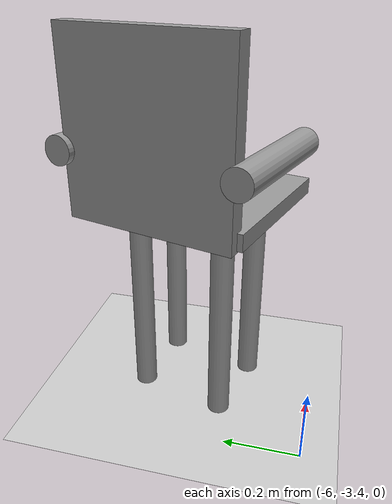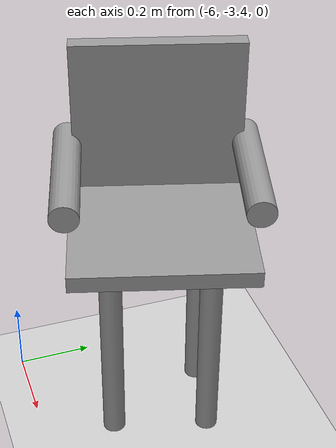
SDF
<sdf version="1.6">
 <world name="default">
  <model name="ground_plane">
   <static>1</static>
   <link name="link">
    <collision name="collision">
     <geometry><plane><normal>0 0 1</normal><size>100 100</size></plane></geometry>
     <surface>
      <contact><collide_bitmask>65535</collide_bitmask></contact>
      <friction><ode><mu>100</mu><mu2>50</mu2></ode></friction>
     </surface>
    </collision>
    <visual name="visual">
     <cast_shadows>0</cast_shadows>
     <geometry><plane><normal>0 0 1</normal><size>100 100</size></plane></geometry>
     <material>
      <script><uri>file://media/materials/scripts/gazebo.material</uri><name>Gazebo/Grey</name></script>
     </material>
    </visual>
   </link>
  </model>
  <model name="chair_clone_0">
   <link name="link_4">
    <inertial>
     <mass>0.00194051</mass>
     <inertia>
      <ixx>5.14044e-05</ixx>
      <ixy>0</ixy>
      <ixz>0</ixz>
      <iyy>5.14044e-05</iyy>
      <iyz>0</iyz>
      <izz>8.34973e-07</izz>
     </inertia>
    </inertial>
    <pose>-0.140129 -0.127166 -0.209129 0 -0 0</pose>
    <visual name="visual">
     <geometry><cylinder><radius>0.0293355</radius><length>0.561516</length></cylinder></geometry>
     <material>
      <lighting>1</lighting>
      <script><uri>file://media/materials/scripts/gazebo.material</uri><name>Gazebo/Grey</name></script>
      <emissive>0 0 0 1</emissive>
     </material>
    </visual>
    <collision name="collision">
     <geometry><cylinder><radius>0.029336</radius><length>0.561516</length></cylinder></geometry>
     <surface>
      <friction>
       <ode><mu>1</mu><mu2>1</mu2><fdir1>0 0 0</fdir1><slip1>0</slip1><slip2>0</slip2></ode>
       <torsional>
        <coefficient>1</coefficient>
        <patch_radius>0</patch_radius>
        <surface_radius>0</surface_radius>
        <use_patch_radius>1</use_patch_radius>
        <ode><slip>0</slip></ode>
       </torsional>
      </friction>
      <bounce><restitution_coefficient>0</restitution_coefficient><threshold>1e+06</threshold></bounce>
      <contact>
       <collide_without_contact>0</collide_without_contact>
       <collide_without_contact_bitmask>1</collide_without_contact_bitmask>
       <collide_bitmask>1</collide_bitmask>
       <ode>
        <soft_cfm>0</soft_cfm>
        <soft_erp>0.2</soft_erp>
        <kp>1e+13</kp>
        <kd>1</kd>
        <max_vel>0.01</max_vel>
        <min_depth>0</min_depth>
       </ode>
       <bullet>
        <split_impulse>1</split_impulse>
        <split_impulse_penetration_threshold>-0.01</split_impulse_penetration_threshold>
        <soft_cfm>0</soft_cfm>
        <soft_erp>0.2</soft_erp>
        <kp>1e+13</kp>
        <kd>1</kd>
       </bullet>
      </contact>
     </surface>
    </collision>
   </link>
   <link name="link_4_clone">
    <inertial>
     <mass>0.00194051</mass>
     <inertia>
      <ixx>5.14044e-05</ixx>
      <ixy>0</ixy>
      <ixz>0</ixz>
      <iyy>5.14044e-05</iyy>
      <iyz>0</iyz>
      <izz>8.34973e-07</izz>
     </inertia>
    </inertial>
    <pose>-0.139565 0.126187 -0.209129 0 -0 0</pose>
    <visual name="visual">
     <geometry><cylinder><radius>0.0293355</radius><length>0.561516</length></cylinder></geometry>
     <material>
      <lighting>1</lighting>
      <script><uri>file://media/materials/scripts/gazebo.material</uri><name>Gazebo/Grey</name></script>
      <shader type="pixel"/>
      <emissive>0 0 0 1</emissive>
     </material>
    </visual>
    <collision name="collision">
     <geometry><cylinder><radius>0.029336</radius><length>0.561516</length></cylinder></geometry>
     <surface>
      <friction>
       <ode><mu>1</mu><mu2>1</mu2><fdir1>0 0 0</fdir1><slip1>0</slip1><slip2>0</slip2></ode>
       <torsional>
        <coefficient>1</coefficient>
        <patch_radius>0</patch_radius>
        <surface_radius>0</surface_radius>
        <use_patch_radius>1</use_patch_radius>
        <ode><slip>0</slip></ode>
       </torsional>
      </friction>
      <bounce><restitution_coefficient>0</restitution_coefficient><threshold>1e+06</threshold></bounce>
      <contact>
       <collide_without_contact>0</collide_without_contact>
       <collide_without_contact_bitmask>1</collide_without_contact_bitmask>
       <collide_bitmask>1</collide_bitmask>
       <ode>
        <soft_cfm>0</soft_cfm>
        <soft_erp>0.2</soft_erp>
        <kp>1e+13</kp>
        <kd>1</kd>
        <max_vel>0.01</max_vel>
        <min_depth>0</min_depth>
       </ode>
       <bullet>
        <split_impulse>1</split_impulse>
        <split_impulse_penetration_threshold>-0.01</split_impulse_penetration_threshold>
        <soft_cfm>0</soft_cfm>
        <soft_erp>0.2</soft_erp>
        <kp>1e+13</kp>
        <kd>1</kd>
       </bullet>
      </contact>
     </surface>
    </collision>
   </link>
   <link name="link_4_clone_0">
    <inertial>
     <mass>0.00194051</mass>
     <inertia>
      <ixx>5.14044e-05</ixx>
      <ixy>0</ixy>
      <ixz>0</ixz>
      <iyy>5.14044e-05</iyy>
      <iyz>0</iyz>
      <izz>8.34973e-07</izz>
     </inertia>
    </inertial>
    <pose>0.062929 0.13105 -0.209129 0 -0 0</pose>
    <visual name="visual">
     <geometry><cylinder><radius>0.0293355</radius><length>0.561516</length></cylinder></geometry>
     <material>
      <lighting>1</lighting>
      <script><uri>file://media/materials/scripts/gazebo.material</uri><name>Gazebo/Grey</name></script>
      <shader type="pixel"/>
      <emissive>0 0 0 1</emissive>
     </material>
    </visual>
    <collision name="collision">
     <geometry><cylinder><radius>0.029336</radius><length>0.561516</length></cylinder></geometry>
     <surface>
      <friction>
       <ode><mu>1</mu><mu2>1</mu2><fdir1>0 0 0</fdir1><slip1>0</slip1><slip2>0</slip2></ode>
       <torsional>
        <coefficient>1</coefficient>
        <patch_radius>0</patch_radius>
        <surface_radius>0</surface_radius>
        <use_patch_radius>1</use_patch_radius>
        <ode><slip>0</slip></ode>
       </torsional>
      </friction>
      <bounce><restitution_coefficient>0</restitution_coefficient><threshold>1e+06</threshold></bounce>
      <contact>
       <collide_without_contact>0</collide_without_contact>
       <collide_without_contact_bitmask>1</collide_without_contact_bitmask>
       <collide_bitmask>1</collide_bitmask>
       <ode>
        <soft_cfm>0</soft_cfm>
        <soft_erp>0.2</soft_erp>
        <kp>1e+13</kp>
        <kd>1</kd>
        <max_vel>0.01</max_vel>
        <min_depth>0</min_depth>
       </ode>
       <bullet>
        <split_impulse>1</split_impulse>
        <split_impulse_penetration_threshold>-0.01</split_impulse_penetration_threshold>
        <soft_cfm>0</soft_cfm>
        <soft_erp>0.2</soft_erp>
        <kp>1e+13</kp>
        <kd>1</kd>
       </bullet>
      </contact>
     </surface>
    </collision>
   </link>
   <link name="link_4_clone_1">
    <inertial>
     <mass>0.00194051</mass>
     <inertia>
      <ixx>5.14044e-05</ixx>
      <ixy>0</ixy>
      <ixz>0</ixz>
      <iyy>5.14044e-05</iyy>
      <iyz>0</iyz>
      <izz>8.34973e-07</izz>
     </inertia>
    </inertial>
    <pose>0.061641 -0.111934 -0.209129 0 -0 0</pose>
    <visual name="visual">
     <geometry><cylinder><radius>0.0293355</radius><length>0.561516</length></cylinder></geometry>
     <material>
      <lighting>1</lighting>
      <script><uri>file://media/materials/scripts/gazebo.material</uri><name>Gazebo/Grey</name></script>
      <shader type="pixel"/>
      <emissive>0 0 0 1</emissive>
     </material>
    </visual>
    <collision name="collision">
     <geometry><cylinder><radius>0.029336</radius><length>0.561516</length></cylinder></geometry>
     <surface>
      <friction>
       <ode><mu>1</mu><mu2>1</mu2><fdir1>0 0 0</fdir1><slip1>0</slip1><slip2>0</slip2></ode>
       <torsional>
        <coefficient>1</coefficient>
        <patch_radius>0</patch_radius>
        <surface_radius>0</surface_radius>
        <use_patch_radius>1</use_patch_radius>
        <ode><slip>0</slip></ode>
       </torsional>
      </friction>
      <bounce><restitution_coefficient>0</restitution_coefficient><threshold>1e+06</threshold></bounce>
      <contact>
       <collide_without_contact>0</collide_without_contact>
       <collide_without_contact_bitmask>1</collide_without_contact_bitmask>
       <collide_bitmask>1</collide_bitmask>
       <ode>
        <soft_cfm>0</soft_cfm>
        <soft_erp>0.2</soft_erp>
        <kp>1e+13</kp>
        <kd>1</kd>
        <max_vel>0.01</max_vel>
        <min_depth>0</min_depth>
       </ode>
       <bullet>
        <split_impulse>1</split_impulse>
        <split_impulse_penetration_threshold>-0.01</split_impulse_penetration_threshold>
        <soft_cfm>0</soft_cfm>
        <soft_erp>0.2</soft_erp>
        <kp>1e+13</kp>
        <kd>1</kd>
       </bullet>
      </contact>
     </surface>
    </collision>
   </link>
   <link name="link_5">
    <inertial>
     <mass>0.00816884</mass>
     <inertia>
      <ixx>0.00015002</ixx>
      <ixy>0</ixy>
      <ixz>0</ixz>
      <iyy>0.000115328</iyy>
      <iyz>0</iyz>
      <izz>0.000262862</izz>
     </inertia>
    </inertial>
    <pose>-0.041662 -0.005028 0.089077 0 -0 0</pose>
    <visual name="visual">
     <geometry><box><size>0.409378 0.467496 0.042729</size></box></geometry>
     <material>
      <lighting>1</lighting>
      <script><uri>file://media/materials/scripts/gazebo.material</uri><name>Gazebo/Grey</name></script>
      <emissive>0 0 0 1</emissive>
     </material>
    </visual>
    <collision name="collision">
     <geometry><box><size>0.409378 0.467496 0.042729</size></box></geometry>
     <surface>
      <friction>
       <ode><mu>1</mu><mu2>1</mu2><fdir1>0 0 0</fdir1><slip1>0</slip1><slip2>0</slip2></ode>
       <torsional>
        <coefficient>1</coefficient>
        <patch_radius>0</patch_radius>
        <surface_radius>0</surface_radius>
        <use_patch_radius>1</use_patch_radius>
        <ode><slip>0</slip></ode>
       </torsional>
      </friction>
      <bounce><restitution_coefficient>0</restitution_coefficient><threshold>1e+06</threshold></bounce>
      <contact>
       <collide_without_contact>0</collide_without_contact>
       <collide_without_contact_bitmask>1</collide_without_contact_bitmask>
       <collide_bitmask>1</collide_bitmask>
       <ode>
        <soft_cfm>0</soft_cfm>
        <soft_erp>0.2</soft_erp>
        <kp>1e+13</kp>
        <kd>1</kd>
        <max_vel>0.01</max_vel>
        <min_depth>0</min_depth>
       </ode>
       <bullet>
        <split_impulse>1</split_impulse>
        <split_impulse_penetration_threshold>-0.01</split_impulse_penetration_threshold>
        <soft_cfm>0</soft_cfm>
        <soft_erp>0.2</soft_erp>
        <kp>1e+13</kp>
        <kd>1</kd>
       </bullet>
      </contact>
     </surface>
    </collision>
   </link>
   <link name="link_6">
    <inertial>
     <mass>0.00855687</mass>
     <inertia>
      <ixx>0.000285159</ixx>
      <ixy>0</ixy>
      <ixz>0</ixz>
      <iyy>0.000146983</iyy>
      <iyz>0</iyz>
      <izz>0.000140925</izz>
     </inertia>
    </inertial>
    <pose>0.165697 -0.006458 0.287866 0 -0 0</pose>
    <visual name="visual">
     <geometry><box><size>0.0439 0.442383 0.451884</size></box></geometry>
     <material>
      <lighting>1</lighting>
      <script><uri>file://media/materials/scripts/gazebo.material</uri><name>Gazebo/Grey</name></script>
      <emissive>0 0 0 1</emissive>
     </material>
    </visual>
    <collision name="collision">
     <geometry><box><size>0.0439 0.442383 0.451884</size></box></geometry>
     <surface>
      <friction>
       <ode><mu>1</mu><mu2>1</mu2><fdir1>0 0 0</fdir1><slip1>0</slip1><slip2>0</slip2></ode>
       <torsional>
        <coefficient>1</coefficient>
        <patch_radius>0</patch_radius>
        <surface_radius>0</surface_radius>
        <use_patch_radius>1</use_patch_radius>
        <ode><slip>0</slip></ode>
       </torsional>
      </friction>
      <bounce><restitution_coefficient>0</restitution_coefficient><threshold>1e+06</threshold></bounce>
      <contact>
       <collide_without_contact>0</collide_without_contact>
       <collide_without_contact_bitmask>1</collide_without_contact_bitmask>
       <collide_bitmask>1</collide_bitmask>
       <ode>
        <soft_cfm>0</soft_cfm>
        <soft_erp>0.2</soft_erp>
        <kp>1e+13</kp>
        <kd>1</kd>
        <max_vel>0.01</max_vel>
        <min_depth>0</min_depth>
       </ode>
       <bullet>
        <split_impulse>1</split_impulse>
        <split_impulse_penetration_threshold>-0.01</split_impulse_penetration_threshold>
        <soft_cfm>0</soft_cfm>
        <soft_erp>0.2</soft_erp>
        <kp>1e+13</kp>
        <kd>1</kd>
       </bullet>
      </contact>
     </surface>
    </collision>
   </link>
   <link name="link_7">
    <inertial>
     <mass>0.00209129</mass>
     <inertia>
      <ixx>2.57536e-05</ixx>
      <ixy>0</ixy>
      <ixz>0</ixz>
      <iyy>2.57536e-05</iyy>
      <iyz>0</iyz>
      <izz>1.44551e-06</izz>
     </inertia>
    </inertial>
    <pose>0.0147 0.228665 0.230372 0 1.55081 0</pose>
    <visual name="visual">
     <geometry><cylinder><radius>0.0371808</radius><length>0.378984</length></cylinder></geometry>
     <material>
      <lighting>1</lighting>
      <script><uri>file://media/materials/scripts/gazebo.material</uri><name>Gazebo/Grey</name></script>
      <emissive>0 0 0 1</emissive>
     </material>
    </visual>
    <collision name="collision">
     <geometry><cylinder><radius>0.037181</radius><length>0.378984</length></cylinder></geometry>
     <surface>
      <friction>
       <ode><mu>1</mu><mu2>1</mu2><fdir1>0 0 0</fdir1><slip1>0</slip1><slip2>0</slip2></ode>
       <torsional>
        <coefficient>1</coefficient>
        <patch_radius>0</patch_radius>
        <surface_radius>0</surface_radius>
        <use_patch_radius>1</use_patch_radius>
        <ode><slip>0</slip></ode>
       </torsional>
      </friction>
      <bounce><restitution_coefficient>0</restitution_coefficient><threshold>1e+06</threshold></bounce>
      <contact>
       <collide_without_contact>0</collide_without_contact>
       <collide_without_contact_bitmask>1</collide_without_contact_bitmask>
       <collide_bitmask>1</collide_bitmask>
       <ode>
        <soft_cfm>0</soft_cfm>
        <soft_erp>0.2</soft_erp>
        <kp>1e+13</kp>
        <kd>1</kd>
        <max_vel>0.01</max_vel>
        <min_depth>0</min_depth>
       </ode>
       <bullet>
        <split_impulse>1</split_impulse>
        <split_impulse_penetration_threshold>-0.01</split_impulse_penetration_threshold>
        <soft_cfm>0</soft_cfm>
        <soft_erp>0.2</soft_erp>
        <kp>1e+13</kp>
        <kd>1</kd>
       </bullet>
      </contact>
     </surface>
    </collision>
   </link>
   <link name="link_7_clone">
    <inertial>
     <mass>0.00209129</mass>
     <inertia>
      <ixx>2.57536e-05</ixx>
      <ixy>0</ixy>
      <ixz>0</ixz>
      <iyy>2.57536e-05</iyy>
      <iyz>0</iyz>
      <izz>1.44551e-06</izz>
     </inertia>
    </inertial>
    <pose>0.01639 -0.235319 0.229201 0 1.55081 0</pose>
    <visual name="visual">
     <geometry><cylinder><radius>0.0371808</radius><length>0.378984</length></cylinder></geometry>
     <material>
      <lighting>1</lighting>
      <script><uri>file://media/materials/scripts/gazebo.material</uri><name>Gazebo/Grey</name></script>
      <shader type="pixel"/>
      <emissive>0 0 0 1</emissive>
     </material>
    </visual>
    <collision name="collision">
     <geometry><cylinder><radius>0.037181</radius><length>0.378984</length></cylinder></geometry>
     <surface>
      <friction>
       <ode><mu>1</mu><mu2>1</mu2><fdir1>0 0 0</fdir1><slip1>0</slip1><slip2>0</slip2></ode>
       <torsional>
        <coefficient>1</coefficient>
        <patch_radius>0</patch_radius>
        <surface_radius>0</surface_radius>
        <use_patch_radius>1</use_patch_radius>
        <ode><slip>0</slip></ode>
       </torsional>
      </friction>
      <bounce><restitution_coefficient>0</restitution_coefficient><threshold>1e+06</threshold></bounce>
      <contact>
       <collide_without_contact>0</collide_without_contact>
       <collide_without_contact_bitmask>1</collide_without_contact_bitmask>
       <collide_bitmask>1</collide_bitmask>
       <ode>
        <soft_cfm>0</soft_cfm>
        <soft_erp>0.2</soft_erp>
        <kp>1e+13</kp>
        <kd>1</kd>
        <max_vel>0.01</max_vel>
        <min_depth>0</min_depth>
       </ode>
       <bullet>
        <split_impulse>1</split_impulse>
        <split_impulse_penetration_threshold>-0.01</split_impulse_penetration_threshold>
        <soft_cfm>0</soft_cfm>
        <soft_erp>0.2</soft_erp>
        <kp>1e+13</kp>
        <kd>1</kd>
       </bullet>
      </contact>
     </surface>
    </collision>
   </link>
   <joint name="link_5_JOINT_2" type="fixed">
    <parent>link_5</parent>
    <child>link_4_clone_1</child>
    <physics>
     <ode><limit><cfm>0</cfm><erp>0.2</erp></limit><suspension><cfm>0</cfm><erp>0.2</erp></suspension></ode>
    </physics>
   </joint>
   <joint name="link_5_JOINT_3" type="fixed">
    <parent>link_5</parent>
    <child>link_4</child>
    <physics>
     <ode><limit><cfm>0</cfm><erp>0.2</erp></limit><suspension><cfm>0</cfm><erp>0.2</erp></suspension></ode>
    </physics>
   </joint>
   <joint name="link_5_JOINT_4" type="fixed">
    <parent>link_5</parent>
    <child>link_4_clone_0</child>
    <physics>
     <ode><limit><cfm>0</cfm><erp>0.2</erp></limit><suspension><cfm>0</cfm><erp>0.2</erp></suspension></ode>
    </physics>
   </joint>
   <joint name="link_5_JOINT_5" type="fixed">
    <parent>link_5</parent>
    <child>link_4_clone</child>
    <physics>
     <ode><limit><cfm>0</cfm><erp>0.2</erp></limit><suspension><cfm>0</cfm><erp>0.2</erp></suspension></ode>
    </physics>
   </joint>
   <joint name="link_5_JOINT_6" type="fixed">
    <parent>link_5</parent>
    <child>link_6</child>
    <physics>
     <ode><limit><cfm>0</cfm><erp>0.2</erp></limit><suspension><cfm>0</cfm><erp>0.2</erp></suspension></ode>
    </physics>
   </joint>
   <joint name="link_5_JOINT_7" type="fixed">
    <parent>link_5</parent>
    <child>link_7</child>
    <physics>
     <ode><limit><cfm>0</cfm><erp>0.2</erp></limit><suspension><cfm>0</cfm><erp>0.2</erp></suspension></ode>
    </physics>
   </joint>
   <joint name="link_5_JOINT_8" type="fixed">
    <parent>link_5</parent>
    <child>link_7_clone</child>
    <physics>
     <ode><limit><cfm>0</cfm><erp>0.2</erp></limit><suspension><cfm>0</cfm><erp>0.2</erp></suspension></ode>
    </physics>
   </joint>
   <static>0</static>
   <pose>-5.77784 -3.0508 0.489878 0 3.1e-05 2.86938</pose>
  </model>
 </world>
</sdf>
